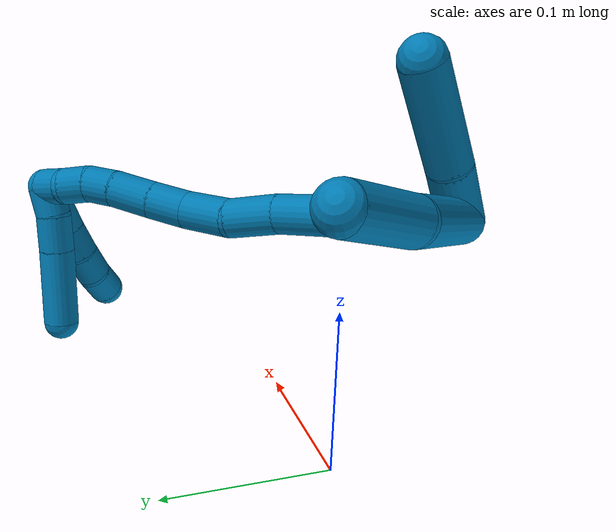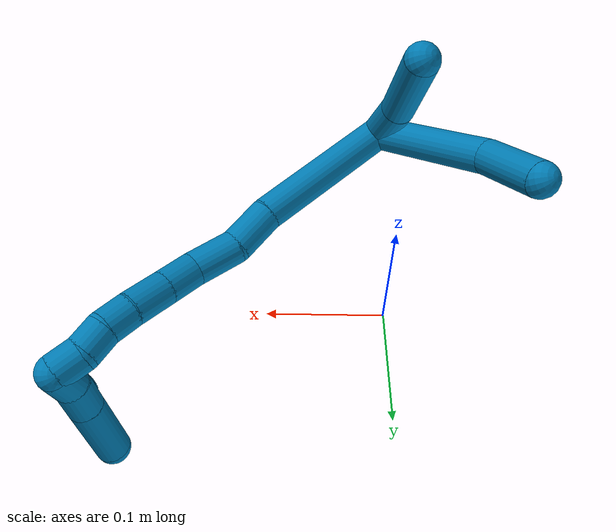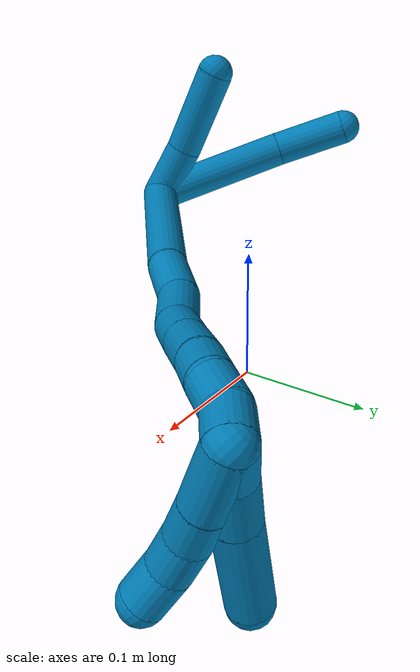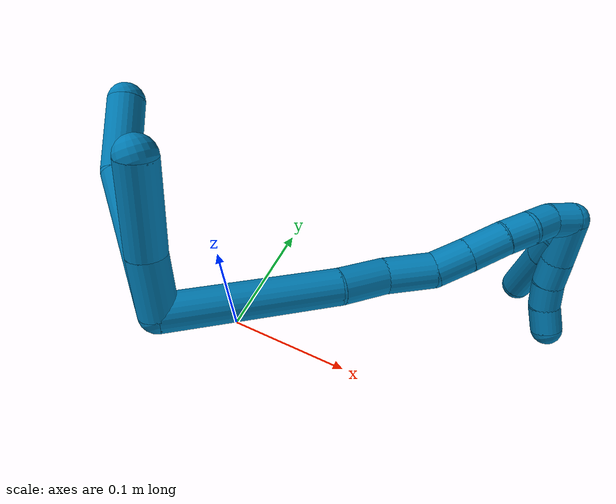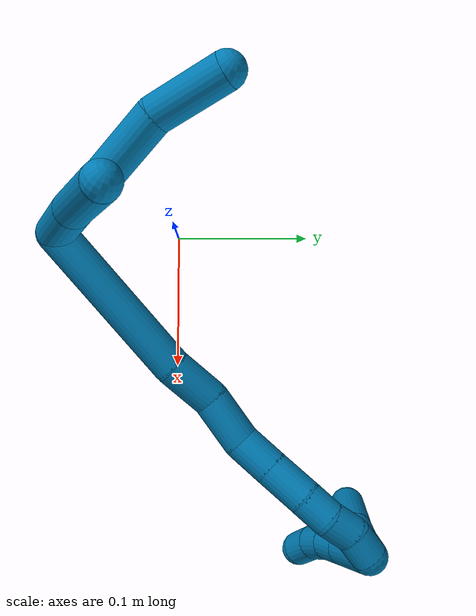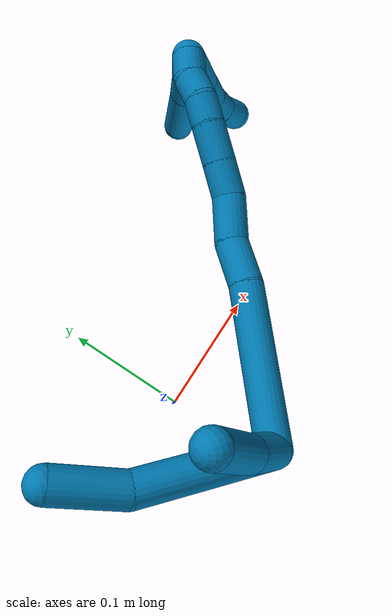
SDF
<sdf version="1.7">
 <world name="default">
  <model name="9">
   <static>0</static>
   <link name="9">
    <collision name="collision-cylinder-e_1_2_8">
     <pose>-0.006737 0.018243 0.045144 -0.384054 -0.137497 0.026773</pose>
     <geometry><cylinder><radius>0.0125</radius><length>0.098309</length></cylinder></geometry>
     <surface>
      <friction><ode><mu>1.16</mu><mu2>1.16</mu2><slip1>0</slip1><slip2>0</slip2></ode></friction>
      <contact><ode><kp>1e+06</kp><kd>1</kd><max_vel>0</max_vel><min_depth>0.001</min_depth></ode></contact>
     </surface>
    </collision>
    <visual name="visual-cylinder-e_1_2_8">
     <pose>-0.006737 0.018243 0.045144 -0.384054 -0.137497 0.026773</pose>
     <geometry><cylinder><radius>0.0125</radius><length>0.098309</length></cylinder></geometry>
     <material><ambient>0 0.490196 0.709804 1</ambient></material>
    </visual>
    <collision name="collision-cylinder-e_2_8_6">
     <pose>-0.00919 0.048218 0.112915 -0.478293 0.166539 -0.040693</pose>
     <geometry><cylinder><radius>0.0125</radius><length>0.051691</length></cylinder></geometry>
     <surface>
      <friction><ode><mu>1.16</mu><mu2>1.16</mu2><slip1>0</slip1><slip2>0</slip2></ode></friction>
      <contact><ode><kp>1e+06</kp><kd>1</kd><max_vel>0</max_vel><min_depth>0.001</min_depth></ode></contact>
     </surface>
    </collision>
    <visual name="visual-cylinder-e_2_8_6">
     <pose>-0.00919 0.048218 0.112915 -0.478293 0.166539 -0.040693</pose>
     <geometry><cylinder><radius>0.0125</radius><length>0.051691</length></cylinder></geometry>
     <material><ambient>0 0.490196 0.709804 1</ambient></material>
    </visual>
    <collision name="collision-cylinder-e_1_2_9">
     <pose>0.006332 -0.004589 0.018229 0.246627 0.324887 0.04062</pose>
     <geometry><cylinder><radius>0.0125</radius><length>0.039671</length></cylinder></geometry>
     <surface>
      <friction><ode><mu>1.16</mu><mu2>1.16</mu2><slip1>0</slip1><slip2>0</slip2></ode></friction>
      <contact><ode><kp>1e+06</kp><kd>1</kd><max_vel>0</max_vel><min_depth>0.001</min_depth></ode></contact>
     </surface>
    </collision>
    <visual name="visual-cylinder-e_1_2_9">
     <pose>0.006332 -0.004589 0.018229 0.246627 0.324887 0.04062</pose>
     <geometry><cylinder><radius>0.0125</radius><length>0.039671</length></cylinder></geometry>
     <material><ambient>0 0.490196 0.709804 1</ambient></material>
    </visual>
    <collision name="collision-cylinder-e_2_9_5">
     <pose>0.025694 -0.01761 0.062323 0.315111 0.446709 0.072143</pose>
     <geometry><cylinder><radius>0.0125</radius><length>0.060329</length></cylinder></geometry>
     <surface>
      <friction><ode><mu>1.16</mu><mu2>1.16</mu2><slip1>0</slip1><slip2>0</slip2></ode></friction>
      <contact><ode><kp>1e+06</kp><kd>1</kd><max_vel>0</max_vel><min_depth>0.001</min_depth></ode></contact>
     </surface>
    </collision>
    <visual name="visual-cylinder-e_2_9_5">
     <pose>0.025694 -0.01761 0.062323 0.315111 0.446709 0.072143</pose>
     <geometry><cylinder><radius>0.0125</radius><length>0.060329</length></cylinder></geometry>
     <material><ambient>0 0.490196 0.709804 1</ambient></material>
    </visual>
    <collision name="collision-cylinder-e_1_2_10">
     <pose>0.047482 0.028926 -0.012937 -1.99135 0.982314 -1.37978</pose>
     <geometry><cylinder><radius>0.0125</radius><length>0.114169</length></cylinder></geometry>
     <surface>
      <friction><ode><mu>1.16</mu><mu2>1.16</mu2><slip1>0</slip1><slip2>0</slip2></ode></friction>
      <contact><ode><kp>1e+06</kp><kd>1</kd><max_vel>0</max_vel><min_depth>0.001</min_depth></ode></contact>
     </surface>
    </collision>
    <visual name="visual-cylinder-e_1_2_10">
     <pose>0.047482 0.028926 -0.012937 -1.99135 0.982314 -1.37978</pose>
     <geometry><cylinder><radius>0.0125</radius><length>0.114169</length></cylinder></geometry>
     <material><ambient>0 0.490196 0.709804 1</ambient></material>
    </visual>
    <collision name="collision-cylinder-e_2_10_11">
     <pose>0.10777 0.06873 -0.028646 -1.82036 0.851083 -1.05602</pose>
     <geometry><cylinder><radius>0.0125</radius><length>0.034057</length></cylinder></geometry>
     <surface>
      <friction><ode><mu>1.16</mu><mu2>1.16</mu2><slip1>0</slip1><slip2>0</slip2></ode></friction>
      <contact><ode><kp>1e+06</kp><kd>1</kd><max_vel>0</max_vel><min_depth>0.001</min_depth></ode></contact>
     </surface>
    </collision>
    <visual name="visual-cylinder-e_2_10_11">
     <pose>0.10777 0.06873 -0.028646 -1.82036 0.851083 -1.05602</pose>
     <geometry><cylinder><radius>0.0125</radius><length>0.034057</length></cylinder></geometry>
     <material><ambient>0 0.490196 0.709804 1</ambient></material>
    </visual>
    <collision name="collision-cylinder-e_3_11_12">
     <pose>0.136145 0.086433 -0.03551 -2.11074 1.09825 -1.64781</pose>
     <geometry><cylinder><radius>0.0125</radius><length>0.034971</length></cylinder></geometry>
     <surface>
      <friction><ode><mu>1.16</mu><mu2>1.16</mu2><slip1>0</slip1><slip2>0</slip2></ode></friction>
      <contact><ode><kp>1e+06</kp><kd>1</kd><max_vel>0</max_vel><min_depth>0.001</min_depth></ode></contact>
     </surface>
    </collision>
    <visual name="visual-cylinder-e_3_11_12">
     <pose>0.136145 0.086433 -0.03551 -2.11074 1.09825 -1.64781</pose>
     <geometry><cylinder><radius>0.0125</radius><length>0.034971</length></cylinder></geometry>
     <material><ambient>0 0.490196 0.709804 1</ambient></material>
    </visual>
    <collision name="collision-cylinder-e_4_12_13">
     <pose>0.163769 0.098811 -0.038942 -1.45256 1.13662 -1.03194</pose>
     <geometry><cylinder><radius>0.0125</radius><length>0.026577</length></cylinder></geometry>
     <surface>
      <friction><ode><mu>1.16</mu><mu2>1.16</mu2><slip1>0</slip1><slip2>0</slip2></ode></friction>
      <contact><ode><kp>1e+06</kp><kd>1</kd><max_vel>0</max_vel><min_depth>0.001</min_depth></ode></contact>
     </surface>
    </collision>
    <visual name="visual-cylinder-e_4_12_13">
     <pose>0.163769 0.098811 -0.038942 -1.45256 1.13662 -1.03194</pose>
     <geometry><cylinder><radius>0.0125</radius><length>0.026577</length></cylinder></geometry>
     <material><ambient>0 0.490196 0.709804 1</ambient></material>
    </visual>
    <collision name="collision-cylinder-e_5_13_14">
     <pose>0.189188 0.110307 -0.037161 -1.38426 1.14563 -0.981908</pose>
     <geometry><cylinder><radius>0.0125</radius><length>0.029338</length></cylinder></geometry>
     <surface>
      <friction><ode><mu>1.16</mu><mu2>1.16</mu2><slip1>0</slip1><slip2>0</slip2></ode></friction>
      <contact><ode><kp>1e+06</kp><kd>1</kd><max_vel>0</max_vel><min_depth>0.001</min_depth></ode></contact>
     </surface>
    </collision>
    <visual name="visual-cylinder-e_5_13_14">
     <pose>0.189188 0.110307 -0.037161 -1.38426 1.14563 -0.981908</pose>
     <geometry><cylinder><radius>0.0125</radius><length>0.029338</length></cylinder></geometry>
     <material><ambient>0 0.490196 0.709804 1</ambient></material>
    </visual>
    <collision name="collision-cylinder-e_6_14_15">
     <pose>0.211729 0.121135 -0.036042 -1.57147 1.08187 -1.08246</pose>
     <geometry><cylinder><radius>0.0125</radius><length>0.020792</length></cylinder></geometry>
     <surface>
      <friction><ode><mu>1.16</mu><mu2>1.16</mu2><slip1>0</slip1><slip2>0</slip2></ode></friction>
      <contact><ode><kp>1e+06</kp><kd>1</kd><max_vel>0</max_vel><min_depth>0.001</min_depth></ode></contact>
     </surface>
    </collision>
    <visual name="visual-cylinder-e_6_14_15">
     <pose>0.211729 0.121135 -0.036042 -1.57147 1.08187 -1.08246</pose>
     <geometry><cylinder><radius>0.0125</radius><length>0.020792</length></cylinder></geometry>
     <material><ambient>0 0.490196 0.709804 1</ambient></material>
    </visual>
    <collision name="collision-cylinder-e_7_15_16">
     <pose>0.228282 0.132758 -0.036532 -1.64292 0.8291 -0.883618</pose>
     <geometry><cylinder><radius>0.0125</radius><length>0.020007</length></cylinder></geometry>
     <surface>
      <friction><ode><mu>1.16</mu><mu2>1.16</mu2><slip1>0</slip1><slip2>0</slip2></ode></friction>
      <contact><ode><kp>1e+06</kp><kd>1</kd><max_vel>0</max_vel><min_depth>0.001</min_depth></ode></contact>
     </surface>
    </collision>
    <visual name="visual-cylinder-e_7_15_16">
     <pose>0.228282 0.132758 -0.036532 -1.64292 0.8291 -0.883618</pose>
     <geometry><cylinder><radius>0.0125</radius><length>0.020007</length></cylinder></geometry>
     <material><ambient>0 0.490196 0.709804 1</ambient></material>
    </visual>
    <collision name="collision-cylinder-e_8_16_1">
     <pose>0.243841 0.144466 -0.040061 -2.12023 0.952212 -1.48797</pose>
     <geometry><cylinder><radius>0.0125</radius><length>0.020089</length></cylinder></geometry>
     <surface>
      <friction><ode><mu>1.16</mu><mu2>1.16</mu2><slip1>0</slip1><slip2>0</slip2></ode></friction>
      <contact><ode><kp>1e+06</kp><kd>1</kd><max_vel>0</max_vel><min_depth>0.001</min_depth></ode></contact>
     </surface>
    </collision>
    <visual name="visual-cylinder-e_8_16_1">
     <pose>0.243841 0.144466 -0.040061 -2.12023 0.952212 -1.48797</pose>
     <geometry><cylinder><radius>0.0125</radius><length>0.020089</length></cylinder></geometry>
     <material><ambient>0 0.490196 0.709804 1</ambient></material>
    </visual>
    <collision name="collision-cylinder-e_1_1_17">
     <pose>0.243445 0.155691 -0.057581 -2.73359 -0.49817 1.77597</pose>
     <geometry><cylinder><radius>0.0125</radius><length>0.035911</length></cylinder></geometry>
     <surface>
      <friction><ode><mu>1.16</mu><mu2>1.16</mu2><slip1>0</slip1><slip2>0</slip2></ode></friction>
      <contact><ode><kp>1e+06</kp><kd>1</kd><max_vel>0</max_vel><min_depth>0.001</min_depth></ode></contact>
     </surface>
    </collision>
    <visual name="visual-cylinder-e_1_1_17">
     <pose>0.243445 0.155691 -0.057581 -2.73359 -0.49817 1.77597</pose>
     <geometry><cylinder><radius>0.0125</radius><length>0.035911</length></cylinder></geometry>
     <material><ambient>0 0.490196 0.709804 1</ambient></material>
    </visual>
    <collision name="collision-cylinder-e_2_17_18">
     <pose>0.229295 0.165293 -0.08096 -2.78229 -0.529936 1.96196</pose>
     <geometry><cylinder><radius>0.0125</radius><length>0.02204</length></cylinder></geometry>
     <surface>
      <friction><ode><mu>1.16</mu><mu2>1.16</mu2><slip1>0</slip1><slip2>0</slip2></ode></friction>
      <contact><ode><kp>1e+06</kp><kd>1</kd><max_vel>0</max_vel><min_depth>0.001</min_depth></ode></contact>
     </surface>
    </collision>
    <visual name="visual-cylinder-e_2_17_18">
     <pose>0.229295 0.165293 -0.08096 -2.78229 -0.529936 1.96196</pose>
     <geometry><cylinder><radius>0.0125</radius><length>0.02204</length></cylinder></geometry>
     <material><ambient>0 0.490196 0.709804 1</ambient></material>
    </visual>
    <collision name="collision-cylinder-e_3_18_19">
     <pose>0.219756 0.171256 -0.099142 -2.86652 -0.390487 1.92031</pose>
     <geometry><cylinder><radius>0.0125</radius><length>0.020856</length></cylinder></geometry>
     <surface>
      <friction><ode><mu>1.16</mu><mu2>1.16</mu2><slip1>0</slip1><slip2>0</slip2></ode></friction>
      <contact><ode><kp>1e+06</kp><kd>1</kd><max_vel>0</max_vel><min_depth>0.001</min_depth></ode></contact>
     </surface>
    </collision>
    <visual name="visual-cylinder-e_3_18_19">
     <pose>0.219756 0.171256 -0.099142 -2.86652 -0.390487 1.92031</pose>
     <geometry><cylinder><radius>0.0125</radius><length>0.020856</length></cylinder></geometry>
     <material><ambient>0 0.490196 0.709804 1</ambient></material>
    </visual>
    <collision name="collision-cylinder-e_4_19_4">
     <pose>0.213829 0.175318 -0.118736 -3.00257 -0.185788 1.85797</pose>
     <geometry><cylinder><radius>0.0125</radius><length>0.021194</length></cylinder></geometry>
     <surface>
      <friction><ode><mu>1.16</mu><mu2>1.16</mu2><slip1>0</slip1><slip2>0</slip2></ode></friction>
      <contact><ode><kp>1e+06</kp><kd>1</kd><max_vel>0</max_vel><min_depth>0.001</min_depth></ode></contact>
     </surface>
    </collision>
    <visual name="visual-cylinder-e_4_19_4">
     <pose>0.213829 0.175318 -0.118736 -3.00257 -0.185788 1.85797</pose>
     <geometry><cylinder><radius>0.0125</radius><length>0.021194</length></cylinder></geometry>
     <material><ambient>0 0.490196 0.709804 1</ambient></material>
    </visual>
    <collision name="collision-cylinder-e_1_1_20">
     <pose>0.245379 0.154869 -0.048715 -2.37215 -0.704798 1.47471</pose>
     <geometry><cylinder><radius>0.0125</radius><length>0.020514</length></cylinder></geometry>
     <surface>
      <friction><ode><mu>1.16</mu><mu2>1.16</mu2><slip1>0</slip1><slip2>0</slip2></ode></friction>
      <contact><ode><kp>1e+06</kp><kd>1</kd><max_vel>0</max_vel><min_depth>0.001</min_depth></ode></contact>
     </surface>
    </collision>
    <visual name="visual-cylinder-e_1_1_20">
     <pose>0.245379 0.154869 -0.048715 -2.37215 -0.704798 1.47471</pose>
     <geometry><cylinder><radius>0.0125</radius><length>0.020514</length></cylinder></geometry>
     <material><ambient>0 0.490196 0.709804 1</ambient></material>
    </visual>
    <collision name="collision-cylinder-e_2_20_21">
     <pose>0.23245 0.168843 -0.061575 -2.27462 -0.511322 1.02816</pose>
     <geometry><cylinder><radius>0.0125</radius><length>0.025685</length></cylinder></geometry>
     <surface>
      <friction><ode><mu>1.16</mu><mu2>1.16</mu2><slip1>0</slip1><slip2>0</slip2></ode></friction>
      <contact><ode><kp>1e+06</kp><kd>1</kd><max_vel>0</max_vel><min_depth>0.001</min_depth></ode></contact>
     </surface>
    </collision>
    <visual name="visual-cylinder-e_2_20_21">
     <pose>0.23245 0.168843 -0.061575 -2.27462 -0.511322 1.02816</pose>
     <geometry><cylinder><radius>0.0125</radius><length>0.025685</length></cylinder></geometry>
     <material><ambient>0 0.490196 0.709804 1</ambient></material>
    </visual>
    <collision name="collision-cylinder-e_3_21_3">
     <pose>0.212705 0.195835 -0.083032 -2.22699 -0.524058 0.998009</pose>
     <geometry><cylinder><radius>0.0125</radius><length>0.053801</length></cylinder></geometry>
     <surface>
      <friction><ode><mu>1.16</mu><mu2>1.16</mu2><slip1>0</slip1><slip2>0</slip2></ode></friction>
      <contact><ode><kp>1e+06</kp><kd>1</kd><max_vel>0</max_vel><min_depth>0.001</min_depth></ode></contact>
     </surface>
    </collision>
    <visual name="visual-cylinder-e_3_21_3">
     <pose>0.212705 0.195835 -0.083032 -2.22699 -0.524058 0.998009</pose>
     <geometry><cylinder><radius>0.0125</radius><length>0.053801</length></cylinder></geometry>
     <material><ambient>0 0.490196 0.709804 1</ambient></material>
    </visual>
    <collision name="collision-sphere-3">
     <pose>0.199244 0.214289 -0.097242 0 -0 0</pose>
     <geometry><sphere><radius>0.0125</radius></sphere></geometry>
     <surface>
      <friction><ode><mu>1.16</mu><mu2>1.16</mu2><slip1>0</slip1><slip2>0</slip2></ode></friction>
      <contact><ode><kp>1e+06</kp><kd>1</kd><max_vel>0</max_vel><min_depth>0.001</min_depth></ode></contact>
     </surface>
    </collision>
    <visual name="visual-sphere-3">
     <pose>0.199244 0.214289 -0.097242 0 -0 0</pose>
     <geometry><sphere><radius>0.0125</radius></sphere></geometry>
     <material><ambient>0 0.490196 0.709804 1</ambient></material>
    </visual>
    <collision name="collision-sphere-21">
     <pose>0.226166 0.177382 -0.068822 0 -0 0</pose>
     <geometry><sphere><radius>0.0125</radius></sphere></geometry>
     <surface>
      <friction><ode><mu>1.16</mu><mu2>1.16</mu2><slip1>0</slip1><slip2>0</slip2></ode></friction>
      <contact><ode><kp>1e+06</kp><kd>1</kd><max_vel>0</max_vel><min_depth>0.001</min_depth></ode></contact>
     </surface>
    </collision>
    <visual name="visual-sphere-21">
     <pose>0.226166 0.177382 -0.068822 0 -0 0</pose>
     <geometry><sphere><radius>0.0125</radius></sphere></geometry>
     <material><ambient>0 0.490196 0.709804 1</ambient></material>
    </visual>
    <collision name="collision-sphere-20">
     <pose>0.238734 0.160305 -0.054327 0 -0 0</pose>
     <geometry><sphere><radius>0.0125</radius></sphere></geometry>
     <surface>
      <friction><ode><mu>1.16</mu><mu2>1.16</mu2><slip1>0</slip1><slip2>0</slip2></ode></friction>
      <contact><ode><kp>1e+06</kp><kd>1</kd><max_vel>0</max_vel><min_depth>0.001</min_depth></ode></contact>
     </surface>
    </collision>
    <visual name="visual-sphere-20">
     <pose>0.238734 0.160305 -0.054327 0 -0 0</pose>
     <geometry><sphere><radius>0.0125</radius></sphere></geometry>
     <material><ambient>0 0.490196 0.709804 1</ambient></material>
    </visual>
    <collision name="collision-sphere-4">
     <pose>0.211872 0.176761 -0.12905 0 -0 0</pose>
     <geometry><sphere><radius>0.0125</radius></sphere></geometry>
     <surface>
      <friction><ode><mu>1.16</mu><mu2>1.16</mu2><slip1>0</slip1><slip2>0</slip2></ode></friction>
      <contact><ode><kp>1e+06</kp><kd>1</kd><max_vel>0</max_vel><min_depth>0.001</min_depth></ode></contact>
     </surface>
    </collision>
    <visual name="visual-sphere-4">
     <pose>0.211872 0.176761 -0.12905 0 -0 0</pose>
     <geometry><sphere><radius>0.0125</radius></sphere></geometry>
     <material><ambient>0 0.490196 0.709804 1</ambient></material>
    </visual>
    <collision name="collision-sphere-10">
     <pose>0.094964 0.057853 -0.025874 0 -0 0</pose>
     <geometry><sphere><radius>0.0125</radius></sphere></geometry>
     <surface>
      <friction><ode><mu>1.16</mu><mu2>1.16</mu2><slip1>0</slip1><slip2>0</slip2></ode></friction>
      <contact><ode><kp>1e+06</kp><kd>1</kd><max_vel>0</max_vel><min_depth>0.001</min_depth></ode></contact>
     </surface>
    </collision>
    <visual name="visual-sphere-10">
     <pose>0.094964 0.057853 -0.025874 0 -0 0</pose>
     <geometry><sphere><radius>0.0125</radius></sphere></geometry>
     <material><ambient>0 0.490196 0.709804 1</ambient></material>
    </visual>
    <collision name="collision-sphere-5">
     <pose>0.038725 -0.026041 0.088188 0 -0 0</pose>
     <geometry><sphere><radius>0.0125</radius></sphere></geometry>
     <surface>
      <friction><ode><mu>1.16</mu><mu2>1.16</mu2><slip1>0</slip1><slip2>0</slip2></ode></friction>
      <contact><ode><kp>1e+06</kp><kd>1</kd><max_vel>0</max_vel><min_depth>0.001</min_depth></ode></contact>
     </surface>
    </collision>
    <visual name="visual-sphere-5">
     <pose>0.038725 -0.026041 0.088188 0 -0 0</pose>
     <geometry><sphere><radius>0.0125</radius></sphere></geometry>
     <material><ambient>0 0.490196 0.709804 1</ambient></material>
    </visual>
    <collision name="collision-sphere-6">
     <pose>-0.004906 0.059949 0.135543 0 -0 0</pose>
     <geometry><sphere><radius>0.0125</radius></sphere></geometry>
     <surface>
      <friction><ode><mu>1.16</mu><mu2>1.16</mu2><slip1>0</slip1><slip2>0</slip2></ode></friction>
      <contact><ode><kp>1e+06</kp><kd>1</kd><max_vel>0</max_vel><min_depth>0.001</min_depth></ode></contact>
     </surface>
    </collision>
    <visual name="visual-sphere-6">
     <pose>-0.004906 0.059949 0.135543 0 -0 0</pose>
     <geometry><sphere><radius>0.0125</radius></sphere></geometry>
     <material><ambient>0 0.490196 0.709804 1</ambient></material>
    </visual>
    <collision name="collision-sphere-9">
     <pose>0.012663 -0.009178 0.036458 0 -0 0</pose>
     <geometry><sphere><radius>0.0125</radius></sphere></geometry>
     <surface>
      <friction><ode><mu>1.16</mu><mu2>1.16</mu2><slip1>0</slip1><slip2>0</slip2></ode></friction>
      <contact><ode><kp>1e+06</kp><kd>1</kd><max_vel>0</max_vel><min_depth>0.001</min_depth></ode></contact>
     </surface>
    </collision>
    <visual name="visual-sphere-9">
     <pose>0.012663 -0.009178 0.036458 0 -0 0</pose>
     <geometry><sphere><radius>0.0125</radius></sphere></geometry>
     <material><ambient>0 0.490196 0.709804 1</ambient></material>
    </visual>
    <collision name="collision-sphere-2">
     <geometry><sphere><radius>0.0125</radius></sphere></geometry>
     <surface>
      <friction><ode><mu>1.16</mu><mu2>1.16</mu2><slip1>0</slip1><slip2>0</slip2></ode></friction>
      <contact><ode><kp>1e+06</kp><kd>1</kd><max_vel>0</max_vel><min_depth>0.001</min_depth></ode></contact>
     </surface>
    </collision>
    <visual name="visual-sphere-2">
     <geometry><sphere><radius>0.0125</radius></sphere></geometry>
     <material><ambient>0 0.490196 0.709804 1</ambient></material>
    </visual>
    <collision name="collision-sphere-19">
     <pose>0.215787 0.173875 -0.108422 0 -0 0</pose>
     <geometry><sphere><radius>0.0125</radius></sphere></geometry>
     <surface>
      <friction><ode><mu>1.16</mu><mu2>1.16</mu2><slip1>0</slip1><slip2>0</slip2></ode></friction>
      <contact><ode><kp>1e+06</kp><kd>1</kd><max_vel>0</max_vel><min_depth>0.001</min_depth></ode></contact>
     </surface>
    </collision>
    <visual name="visual-sphere-19">
     <pose>0.215787 0.173875 -0.108422 0 -0 0</pose>
     <geometry><sphere><radius>0.0125</radius></sphere></geometry>
     <material><ambient>0 0.490196 0.709804 1</ambient></material>
    </visual>
    <collision name="collision-sphere-8">
     <pose>-0.013475 0.036487 0.090287 0 -0 0</pose>
     <geometry><sphere><radius>0.0125</radius></sphere></geometry>
     <surface>
      <friction><ode><mu>1.16</mu><mu2>1.16</mu2><slip1>0</slip1><slip2>0</slip2></ode></friction>
      <contact><ode><kp>1e+06</kp><kd>1</kd><max_vel>0</max_vel><min_depth>0.001</min_depth></ode></contact>
     </surface>
    </collision>
    <visual name="visual-sphere-8">
     <pose>-0.013475 0.036487 0.090287 0 -0 0</pose>
     <geometry><sphere><radius>0.0125</radius></sphere></geometry>
     <material><ambient>0 0.490196 0.709804 1</ambient></material>
    </visual>
    <collision name="collision-sphere-11">
     <pose>0.120575 0.079607 -0.031419 0 -0 0</pose>
     <geometry><sphere><radius>0.0125</radius></sphere></geometry>
     <surface>
      <friction><ode><mu>1.16</mu><mu2>1.16</mu2><slip1>0</slip1><slip2>0</slip2></ode></friction>
      <contact><ode><kp>1e+06</kp><kd>1</kd><max_vel>0</max_vel><min_depth>0.001</min_depth></ode></contact>
     </surface>
    </collision>
    <visual name="visual-sphere-11">
     <pose>0.120575 0.079607 -0.031419 0 -0 0</pose>
     <geometry><sphere><radius>0.0125</radius></sphere></geometry>
     <material><ambient>0 0.490196 0.709804 1</ambient></material>
    </visual>
    <collision name="collision-sphere-12">
     <pose>0.151714 0.09326 -0.039602 0 -0 0</pose>
     <geometry><sphere><radius>0.0125</radius></sphere></geometry>
     <surface>
      <friction><ode><mu>1.16</mu><mu2>1.16</mu2><slip1>0</slip1><slip2>0</slip2></ode></friction>
      <contact><ode><kp>1e+06</kp><kd>1</kd><max_vel>0</max_vel><min_depth>0.001</min_depth></ode></contact>
     </surface>
    </collision>
    <visual name="visual-sphere-12">
     <pose>0.151714 0.09326 -0.039602 0 -0 0</pose>
     <geometry><sphere><radius>0.0125</radius></sphere></geometry>
     <material><ambient>0 0.490196 0.709804 1</ambient></material>
    </visual>
    <collision name="collision-sphere-13">
     <pose>0.175825 0.104361 -0.038283 0 -0 0</pose>
     <geometry><sphere><radius>0.0125</radius></sphere></geometry>
     <surface>
      <friction><ode><mu>1.16</mu><mu2>1.16</mu2><slip1>0</slip1><slip2>0</slip2></ode></friction>
      <contact><ode><kp>1e+06</kp><kd>1</kd><max_vel>0</max_vel><min_depth>0.001</min_depth></ode></contact>
     </surface>
    </collision>
    <visual name="visual-sphere-13">
     <pose>0.175825 0.104361 -0.038283 0 -0 0</pose>
     <geometry><sphere><radius>0.0125</radius></sphere></geometry>
     <material><ambient>0 0.490196 0.709804 1</ambient></material>
    </visual>
    <collision name="collision-sphere-14">
     <pose>0.202551 0.116252 -0.036039 0 -0 0</pose>
     <geometry><sphere><radius>0.0125</radius></sphere></geometry>
     <surface>
      <friction><ode><mu>1.16</mu><mu2>1.16</mu2><slip1>0</slip1><slip2>0</slip2></ode></friction>
      <contact><ode><kp>1e+06</kp><kd>1</kd><max_vel>0</max_vel><min_depth>0.001</min_depth></ode></contact>
     </surface>
    </collision>
    <visual name="visual-sphere-14">
     <pose>0.202551 0.116252 -0.036039 0 -0 0</pose>
     <geometry><sphere><radius>0.0125</radius></sphere></geometry>
     <material><ambient>0 0.490196 0.709804 1</ambient></material>
    </visual>
    <collision name="collision-sphere-15">
     <pose>0.220906 0.126018 -0.036045 0 -0 0</pose>
     <geometry><sphere><radius>0.0125</radius></sphere></geometry>
     <surface>
      <friction><ode><mu>1.16</mu><mu2>1.16</mu2><slip1>0</slip1><slip2>0</slip2></ode></friction>
      <contact><ode><kp>1e+06</kp><kd>1</kd><max_vel>0</max_vel><min_depth>0.001</min_depth></ode></contact>
     </surface>
    </collision>
    <visual name="visual-sphere-15">
     <pose>0.220906 0.126018 -0.036045 0 -0 0</pose>
     <geometry><sphere><radius>0.0125</radius></sphere></geometry>
     <material><ambient>0 0.490196 0.709804 1</ambient></material>
    </visual>
    <collision name="collision-sphere-16">
     <pose>0.235658 0.139498 -0.037019 0 -0 0</pose>
     <geometry><sphere><radius>0.0125</radius></sphere></geometry>
     <surface>
      <friction><ode><mu>1.16</mu><mu2>1.16</mu2><slip1>0</slip1><slip2>0</slip2></ode></friction>
      <contact><ode><kp>1e+06</kp><kd>1</kd><max_vel>0</max_vel><min_depth>0.001</min_depth></ode></contact>
     </surface>
    </collision>
    <visual name="visual-sphere-16">
     <pose>0.235658 0.139498 -0.037019 0 -0 0</pose>
     <geometry><sphere><radius>0.0125</radius></sphere></geometry>
     <material><ambient>0 0.490196 0.709804 1</ambient></material>
    </visual>
    <collision name="collision-sphere-1">
     <pose>0.252025 0.149433 -0.043102 0 -0 0</pose>
     <geometry><sphere><radius>0.0125</radius></sphere></geometry>
     <surface>
      <friction><ode><mu>1.16</mu><mu2>1.16</mu2><slip1>0</slip1><slip2>0</slip2></ode></friction>
      <contact><ode><kp>1e+06</kp><kd>1</kd><max_vel>0</max_vel><min_depth>0.001</min_depth></ode></contact>
     </surface>
    </collision>
    <visual name="visual-sphere-1">
     <pose>0.252025 0.149433 -0.043102 0 -0 0</pose>
     <geometry><sphere><radius>0.0125</radius></sphere></geometry>
     <material><ambient>0 0.490196 0.709804 1</ambient></material>
    </visual>
    <collision name="collision-sphere-18">
     <pose>0.223725 0.168637 -0.089861 0 -0 0</pose>
     <geometry><sphere><radius>0.0125</radius></sphere></geometry>
     <surface>
      <friction><ode><mu>1.16</mu><mu2>1.16</mu2><slip1>0</slip1><slip2>0</slip2></ode></friction>
      <contact><ode><kp>1e+06</kp><kd>1</kd><max_vel>0</max_vel><min_depth>0.001</min_depth></ode></contact>
     </surface>
    </collision>
    <visual name="visual-sphere-18">
     <pose>0.223725 0.168637 -0.089861 0 -0 0</pose>
     <geometry><sphere><radius>0.0125</radius></sphere></geometry>
     <material><ambient>0 0.490196 0.709804 1</ambient></material>
    </visual>
    <collision name="collision-sphere-17">
     <pose>0.234866 0.16195 -0.072059 0 -0 0</pose>
     <geometry><sphere><radius>0.0125</radius></sphere></geometry>
     <surface>
      <friction><ode><mu>1.16</mu><mu2>1.16</mu2><slip1>0</slip1><slip2>0</slip2></ode></friction>
      <contact><ode><kp>1e+06</kp><kd>1</kd><max_vel>0</max_vel><min_depth>0.001</min_depth></ode></contact>
     </surface>
    </collision>
    <visual name="visual-sphere-17">
     <pose>0.234866 0.16195 -0.072059 0 -0 0</pose>
     <geometry><sphere><radius>0.0125</radius></sphere></geometry>
     <material><ambient>0 0.490196 0.709804 1</ambient></material>
    </visual>
    <inertial>
     <pose>0.111528 0.08029 -0.011775 0 -0 0</pose>
     <mass>0.75</mass>
     <inertia>
      <ixx>0.000105</ixx>
      <ixy>0</ixy>
      <ixz>0</ixz>
      <iyy>0.000188</iyy>
      <iyz>0</iyz>
      <izz>-0.000229</izz>
     </inertia>
    </inertial>
   </link>
   <pose>0.012453 -0.072848 0.139024 -0.779857 -0.393717 0.511161</pose>
  </model>
 </world>
</sdf>
